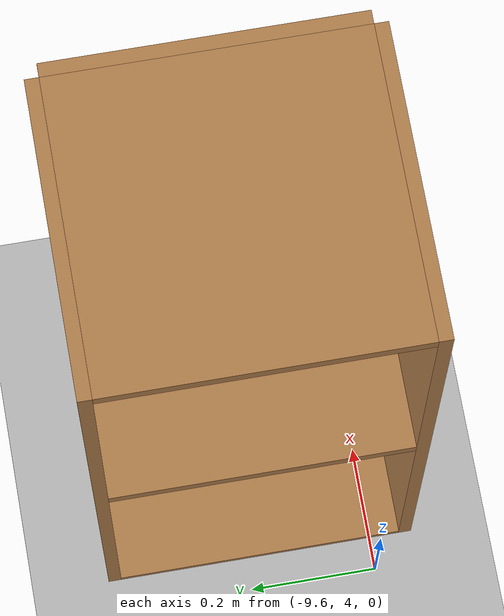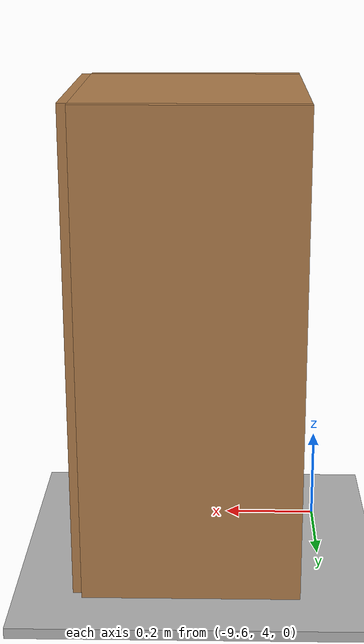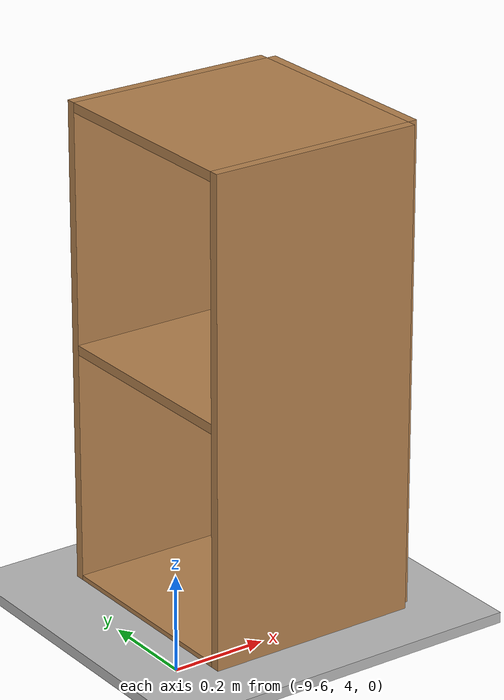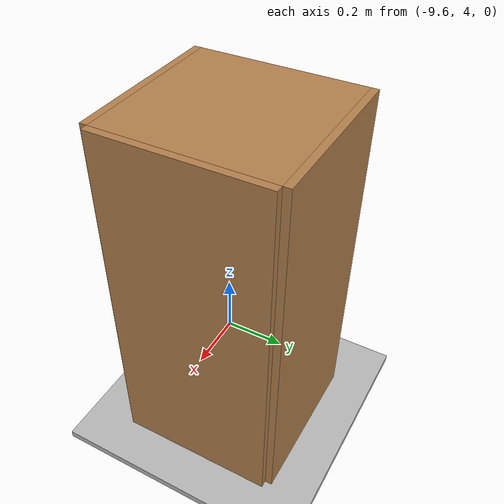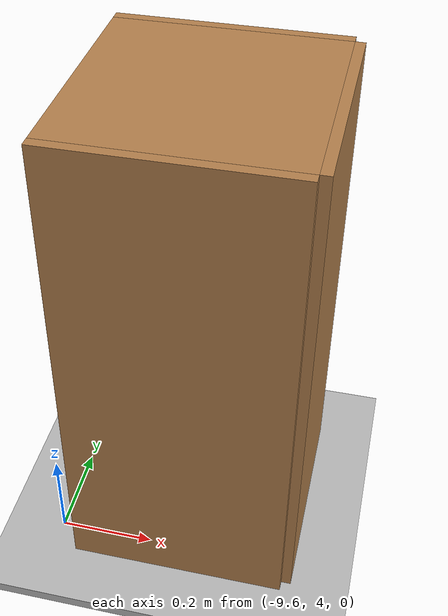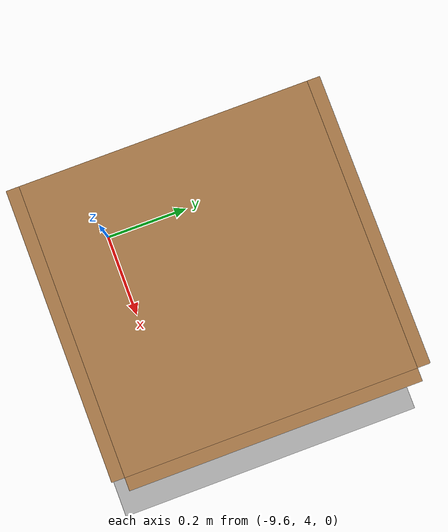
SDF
<sdf version="1.7">
 <world name="default">
  <model name="ceiling">
   <pose>-2.97 11.25 3 3.14159 -0 3.14159</pose>
   <static>1</static>
   <link name="link">
    <visual name="visual">
     <geometry><plane><normal>0 0 1</normal><size>49.5 22.5</size></plane></geometry>
     <material>
      <script>
       <uri>file://media/materials/scripts/</uri>
       <uri>file://media/materials/textures/</uri>
       <name>ServiceSim/Ceiling</name>
      </script>
     </material>
    </visual>
   </link>
  </model>
  <model name="floor">
   <pose>-2.97 11.25 -0.001 0 -0 0</pose>
   <static>1</static>
   <link name="link">
    <visual name="visual">
     <geometry><plane><normal>0 0 1</normal><size>49.5 22.5</size></plane></geometry>
     <material>
      <script>
       <uri>file://media/materials/scripts/</uri>
       <uri>file://media/materials/textures/</uri>
       <name>ServiceSim/Hallway</name>
      </script>
     </material>
    </visual>
    <collision name="collision">
     <geometry><plane><normal>0 0 1</normal><size>49.5 22.5</size></plane></geometry>
     <surface><friction><ode><mu>1</mu><mu2>1</mu2></ode></friction></surface>
    </collision>
   </link>
  </model>
  <model name="cabinet">
   <static>1</static>
   <link name="cabinet_bottom_plate">
    <inertial>
     <pose>0 0 -1 0 -0 0</pose>
     <inertia><ixx>2.05</ixx><ixy>0</ixy><ixz>0</ixz><iyy>2.05</iyy><iyz>0</iyz><izz>2.05</izz></inertia>
     <mass>25</mass>
    </inertial>
    <collision name="cabinet_bottom_plate_geom">
     <pose>0 0 0.01 0 -0 0</pose>
     <geometry><box><size>0.45 0.45 0.02</size></box></geometry>
    </collision>
    <visual name="cabinet_bottom_plate_geom_visual">
     <pose>0 0 0.01 0 -0 0</pose>
     <geometry><box><size>0.45 0.45 0.02</size></box></geometry>
     <material>
      <script><uri>file://media/materials/scripts/gazebo.material</uri><name>Gazebo/Wood</name></script>
     </material>
    </visual>
    <collision name="cabinet_bottom_plate_geom_cabinet_back_plate">
     <pose>0.235 0 0.51 0 -0 0</pose>
     <geometry><box><size>0.02 0.45 1.02</size></box></geometry>
    </collision>
    <visual name="cabinet_bottom_plate_geom_cabinet_back_plate_visual">
     <pose>0.235 0 0.51 0 -0 0</pose>
     <geometry><box><size>0.02 0.45 1.02</size></box></geometry>
     <material>
      <script><uri>file://media/materials/scripts/gazebo.material</uri><name>Gazebo/Wood</name></script>
     </material>
    </visual>
    <collision name="cabinet_bottom_plate_geom_cabinet_left_plate">
     <pose>0 0.235 0.51 0 -0 0</pose>
     <geometry><box><size>0.45 0.02 1.02</size></box></geometry>
    </collision>
    <visual name="cabinet_bottom_plate_geom_cabinet_left_plate_visual">
     <pose>0 0.235 0.51 0 -0 0</pose>
     <geometry><box><size>0.45 0.02 1.02</size></box></geometry>
     <material>
      <script><uri>file://media/materials/scripts/gazebo.material</uri><name>Gazebo/Wood</name></script>
     </material>
    </visual>
    <collision name="cabinet_bottom_plate_geom_cabinet_middle_plate">
     <pose>0 0 0.51 0 -0 0</pose>
     <geometry><box><size>0.45 0.45 0.02</size></box></geometry>
    </collision>
    <visual name="cabinet_bottom_plate_geom_cabinet_middle_plate_visual">
     <pose>0 0 0.51 0 -0 0</pose>
     <geometry><box><size>0.45 0.45 0.02</size></box></geometry>
     <material>
      <script><uri>file://media/materials/scripts/gazebo.material</uri><name>Gazebo/Wood</name></script>
     </material>
    </visual>
    <collision name="cabinet_bottom_plate_geom_cabinet_right_plate">
     <pose>0 -0.235 0.51 0 -0 0</pose>
     <geometry><box><size>0.45 0.02 1.02</size></box></geometry>
    </collision>
    <visual name="cabinet_bottom_plate_geom_cabinet_right_plate_visual">
     <pose>0 -0.235 0.51 0 -0 0</pose>
     <geometry><box><size>0.45 0.02 1.02</size></box></geometry>
     <material>
      <script><uri>file://media/materials/scripts/gazebo.material</uri><name>Gazebo/Wood</name></script>
     </material>
    </visual>
    <collision name="cabinet_bottom_plate_geom_cabinet_top_plate">
     <pose>0 0 1.01 0 -0 0</pose>
     <geometry><box><size>0.45 0.45 0.02</size></box></geometry>
    </collision>
    <visual name="cabinet_bottom_plate_geom_cabinet_top_plate_visual">
     <pose>0 0 1.01 0 -0 0</pose>
     <geometry><box><size>0.45 0.45 0.02</size></box></geometry>
     <material>
      <script><uri>file://media/materials/scripts/gazebo.material</uri><name>Gazebo/Wood</name></script>
     </material>
    </visual>
   </link>
   <pose>-9.32512 4.1781 0 0 -0 0</pose>
  </model>
 </world>
</sdf>
